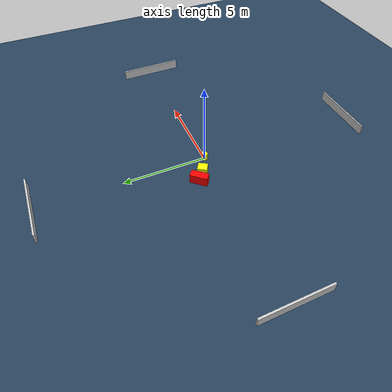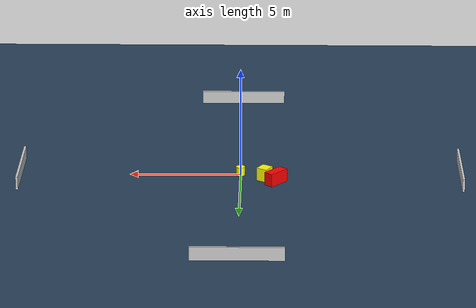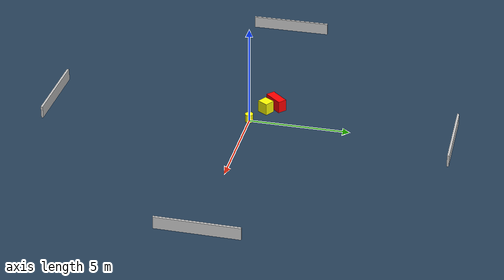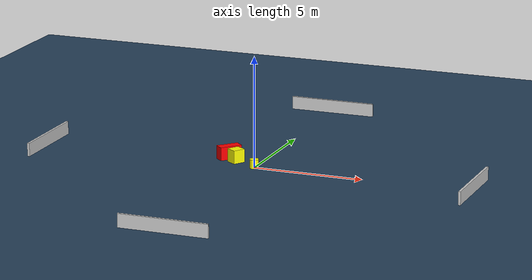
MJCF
<?xml version="1.0" ?>
<mujoco model="generated_environment">
  <option timestep="0.01" integrator="RK4" cone="elliptic"/>
  <default>
    <geom density="1"/>
  </default>
  <asset>
    <texture builtin="gradient" height="3072" name="skybox" rgb1="0.3 0.5 0.7" rgb2="0 0 0" type="skybox" width="512"/>
    <texture builtin="checker" height="300" name="groundplane" rgb1="0.2 0.3 0.4" rgb2="0.1 0.2 0.3" type="2d" width="300"/>
    <material name="groundplane" reflectance="0.2" texrepeat="5 5" texture="groundplane"/>
  </asset>
  <worldbody>
    <light dir="0 0 -1" directional="true" pos="0 0 1.5"/>
    <geom condim="3" friction="0.5 0.005 0.001" material="groundplane" name="floor" pos="0 0 0" size="0 0 0.05" type="plane"/>
    <body name="walls">
      <geom name="wall_1" condim="4" pos="-10.0 0.0 0.3" rgba="0.800000011920929 0.800000011920929 0.800000011920929 1.0" size="0.05 2.0 0.3" type="box"/>
      <geom name="wall_2" condim="4" pos="10.0 0.0 0.3" rgba="0.800000011920929 0.800000011920929 0.800000011920929 1.0" size="0.05 2.0 0.3" type="box"/>
      <geom name="wall_3" condim="4" pos="0.0 -10.0 0.3" rgba="0.800000011920929 0.800000011920929 0.800000011920929 1.0" size="2.0 0.05 0.3" type="box"/>
      <geom name="wall_4" condim="4" pos="0.0 10.0 0.3" rgba="0.800000011920929 0.800000011920929 0.800000011920929 1.0" size="2.0 0.05 0.3" type="box"/>
    </body>
    <body name="robot">
      <joint name="joint_x" type="slide" pos="0 0 0" axis="1 0 0"/>
      <joint name="joint_y" type="slide" pos="0 0 0" axis="0 1 0"/>
      <geom name="robot" type="cylinder" pos="0.0 0.0 0.2" size="0.2 0.2 0.0" mass="5.0" friction="1.0 0.005 0.0001" condim="4" rgba="1.0 1.0 0.0 1.0"/>
    </body>
    <body name="obstacle_1_movable">
      <geom name="obstacle_1_movable" condim="4" pos="-1.0971497848053666 0.5912906209441551 0.3" euler="0 0 57.70073060901395" friction="0.0 0.005 0.001" rgba="1.0 1.0 0.0 1.0" size="0.27812605286035896 0.2547019229635483 0.3" type="box" mass="0.1"/>
      <joint type="free"/>
    </body>
    <body name="obstacle_2_static">
      <geom name="obstacle_2_static" condim="4" pos="-1.5974055172388084 1.0090742927528238 0.3" euler="0 0 318.1720667275783" friction="0.0 0.005 0.001" rgba="1.0 0.0 0.0 1.0" size="0.2227410018442943 0.5125265635638714 0.3" type="box"/>
    </body>
  </worldbody>
  <actuator>
    <motor name="actuator_x" joint="joint_x" gear="1" ctrlrange="-1 1"/>
    <motor name="actuator_y" joint="joint_y" gear="1" ctrlrange="-1 1"/>
  </actuator>
</mujoco>
